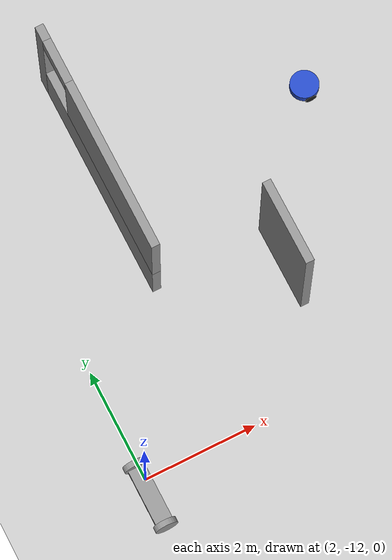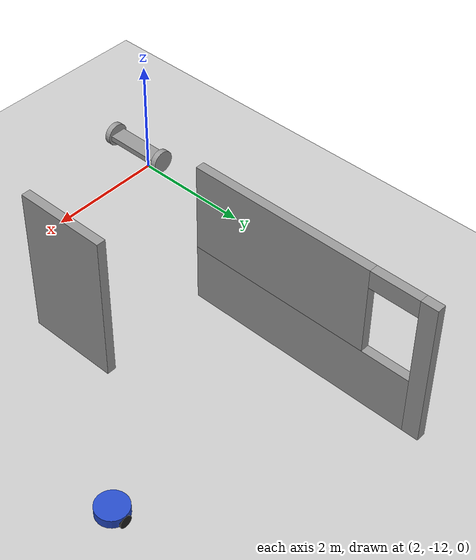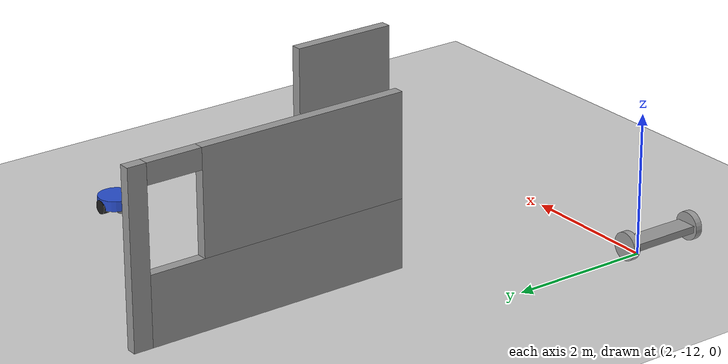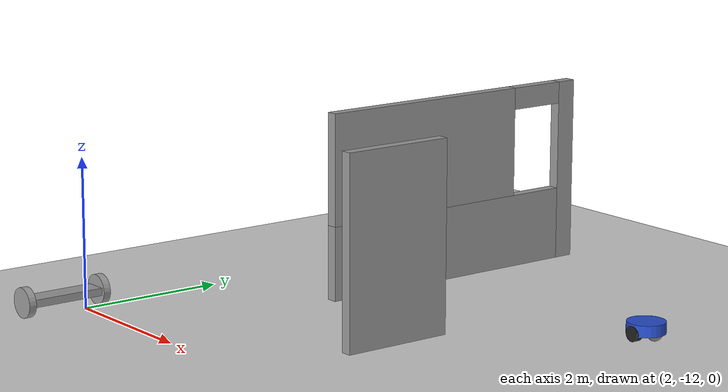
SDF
<sdf version="1.6">
 <world name="default">
  <model name="ground_plane">
   <static>1</static>
   <link name="link">
    <collision name="collision">
     <geometry><plane><normal>0 0 1</normal><size>100 100</size></plane></geometry>
     <surface><friction><ode><mu>100</mu><mu2>50</mu2></ode></friction></surface>
    </collision>
    <visual name="visual">
     <cast_shadows>0</cast_shadows>
     <geometry><plane><normal>0 0 1</normal><size>100 100</size></plane></geometry>
     <material>
      <script><uri>file://media/materials/scripts/gazebo.material</uri><name>Gazebo/Grey</name></script>
     </material>
    </visual>
   </link>
  </model>
  <model name="Tartufino_clone">
   <link name="link_0">
    <pose>0 0 0.04 0 -0 0</pose>
    <inertial>
     <mass>1</mass>
     <inertia><ixx>0.145833</ixx><ixy>0</ixy><ixz>0</ixz><iyy>0.145833</iyy><iyz>0</iyz><izz>0.125</izz></inertia>
    </inertial>
    <visual name="visual">
     <geometry><cylinder><radius>0.25</radius><length>0.15</length></cylinder></geometry>
     <material>
      <lighting>1</lighting>
      <script><uri>file://media/materials/scripts/gazebo.material</uri><name>Gazebo/Blue</name></script>
      <ambient>0.3 0.3 0.3 1</ambient>
      <diffuse>0.7 0.7 0.7 1</diffuse>
      <specular>0.01 0.01 0.01 1</specular>
      <emissive>0 0 0 1</emissive>
      <shader type="vertex"><normal_map>__default__</normal_map></shader>
     </material>
    </visual>
    <collision name="collision">
     <geometry><cylinder><radius>0.25</radius><length>0.15</length></cylinder></geometry>
     <surface>
      <friction>
       <ode><mu>1</mu><mu2>1</mu2><fdir1>0 0 0</fdir1><slip1>0</slip1><slip2>0</slip2></ode>
       <torsional>
        <coefficient>1</coefficient>
        <patch_radius>0</patch_radius>
        <surface_radius>0</surface_radius>
        <use_patch_radius>1</use_patch_radius>
        <ode><slip>0</slip></ode>
       </torsional>
      </friction>
      <bounce><restitution_coefficient>0</restitution_coefficient><threshold>1e+06</threshold></bounce>
      <contact>
       <collide_without_contact>0</collide_without_contact>
       <collide_without_contact_bitmask>1</collide_without_contact_bitmask>
       <collide_bitmask>1</collide_bitmask>
       <ode>
        <soft_cfm>0</soft_cfm>
        <soft_erp>0.2</soft_erp>
        <kp>1e+13</kp>
        <kd>1</kd>
        <max_vel>0.01</max_vel>
        <min_depth>0</min_depth>
       </ode>
       <bullet>
        <split_impulse>1</split_impulse>
        <split_impulse_penetration_threshold>-0.01</split_impulse_penetration_threshold>
        <soft_cfm>0</soft_cfm>
        <soft_erp>0.2</soft_erp>
        <kp>1e+13</kp>
        <kd>1</kd>
       </bullet>
      </contact>
     </surface>
    </collision>
   </link>
   <link name="link_1">
    <pose>0 0.2 -0.01 0 -0 0</pose>
    <inertial>
     <mass>1</mass>
     <inertia><ixx>0.145833</ixx><ixy>0</ixy><ixz>0</ixz><iyy>0.145833</iyy><iyz>0</iyz><izz>0.125</izz></inertia>
    </inertial>
    <visual name="visual">
     <pose>0 0 0 1.5708 -0 0</pose>
     <geometry><cylinder><radius>0.1</radius><length>0.1</length></cylinder></geometry>
     <material>
      <lighting>1</lighting>
      <script><uri>file://media/materials/scripts/gazebo.material</uri><name>Gazebo/Black</name></script>
      <ambient>0.3 0.3 0.3 1</ambient>
      <diffuse>0.7 0.7 0.7 1</diffuse>
      <specular>0.01 0.01 0.01 1</specular>
      <emissive>0 0 0 1</emissive>
      <shader type="vertex"><normal_map>__default__</normal_map></shader>
     </material>
    </visual>
    <collision name="collision">
     <pose>0 0 0 1.5708 -0 0</pose>
     <geometry><cylinder><radius>0.1</radius><length>0.1</length></cylinder></geometry>
     <surface>
      <friction>
       <ode><mu>1</mu><mu2>1</mu2><fdir1>0 0 0</fdir1><slip1>0</slip1><slip2>0</slip2></ode>
       <torsional>
        <coefficient>1</coefficient>
        <patch_radius>0</patch_radius>
        <surface_radius>0</surface_radius>
        <use_patch_radius>1</use_patch_radius>
        <ode><slip>0</slip></ode>
       </torsional>
      </friction>
      <bounce><restitution_coefficient>0</restitution_coefficient><threshold>1e+06</threshold></bounce>
      <contact>
       <collide_without_contact>0</collide_without_contact>
       <collide_without_contact_bitmask>1</collide_without_contact_bitmask>
       <collide_bitmask>1</collide_bitmask>
       <ode>
        <soft_cfm>0</soft_cfm>
        <soft_erp>0.2</soft_erp>
        <kp>1e+13</kp>
        <kd>1</kd>
        <max_vel>0.01</max_vel>
        <min_depth>0</min_depth>
       </ode>
       <bullet>
        <split_impulse>1</split_impulse>
        <split_impulse_penetration_threshold>-0.01</split_impulse_penetration_threshold>
        <soft_cfm>0</soft_cfm>
        <soft_erp>0.2</soft_erp>
        <kp>1e+13</kp>
        <kd>1</kd>
       </bullet>
      </contact>
     </surface>
    </collision>
   </link>
   <link name="link_1_clone">
    <pose>0 -0.2 -0.01 0 -0 0</pose>
    <inertial>
     <mass>1</mass>
     <inertia><ixx>0.145833</ixx><ixy>0</ixy><ixz>0</ixz><iyy>0.145833</iyy><iyz>0</iyz><izz>0.125</izz></inertia>
    </inertial>
    <visual name="visual">
     <pose>0 0 0 1.5708 -0 0</pose>
     <geometry><cylinder><radius>0.1</radius><length>0.1</length></cylinder></geometry>
     <material>
      <lighting>1</lighting>
      <script><uri>file://media/materials/scripts/gazebo.material</uri><name>Gazebo/Black</name></script>
      <ambient>0.3 0.3 0.3 1</ambient>
      <diffuse>0.7 0.7 0.7 1</diffuse>
      <specular>0.01 0.01 0.01 1</specular>
      <emissive>0 0 0 1</emissive>
      <shader type="vertex"><normal_map>__default__</normal_map></shader>
     </material>
    </visual>
    <collision name="collision">
     <pose>0 0 0 1.5708 -0 0</pose>
     <geometry><cylinder><radius>0.1</radius><length>0.1</length></cylinder></geometry>
     <surface>
      <friction>
       <ode><mu>1</mu><mu2>1</mu2><fdir1>0 0 0</fdir1><slip1>0</slip1><slip2>0</slip2></ode>
       <torsional>
        <coefficient>1</coefficient>
        <patch_radius>0</patch_radius>
        <surface_radius>0</surface_radius>
        <use_patch_radius>1</use_patch_radius>
        <ode><slip>0</slip></ode>
       </torsional>
      </friction>
      <bounce><restitution_coefficient>0</restitution_coefficient><threshold>1e+06</threshold></bounce>
      <contact>
       <collide_without_contact>0</collide_without_contact>
       <collide_without_contact_bitmask>1</collide_without_contact_bitmask>
       <collide_bitmask>1</collide_bitmask>
       <ode>
        <soft_cfm>0</soft_cfm>
        <soft_erp>0.2</soft_erp>
        <kp>1e+13</kp>
        <kd>1</kd>
        <max_vel>0.01</max_vel>
        <min_depth>0</min_depth>
       </ode>
       <bullet>
        <split_impulse>1</split_impulse>
        <split_impulse_penetration_threshold>-0.01</split_impulse_penetration_threshold>
        <soft_cfm>0</soft_cfm>
        <soft_erp>0.2</soft_erp>
        <kp>1e+13</kp>
        <kd>1</kd>
       </bullet>
      </contact>
     </surface>
    </collision>
   </link>
   <link name="link_2">
    <pose>-0.15 0 -0.01 0 -0 0</pose>
    <inertial>
     <mass>1</mass>
     <inertia><ixx>0.1</ixx><ixy>0</ixy><ixz>0</ixz><iyy>0.1</iyy><iyz>0</iyz><izz>0.1</izz></inertia>
    </inertial>
    <visual name="visual">
     <geometry><sphere><radius>0.1</radius></sphere></geometry>
     <material>
      <lighting>1</lighting>
      <script><uri>file://media/materials/scripts/gazebo.material</uri><name>Gazebo/Grey</name></script>
      <ambient>0.3 0.3 0.3 1</ambient>
      <diffuse>0.7 0.7 0.7 1</diffuse>
      <specular>0.01 0.01 0.01 1</specular>
      <emissive>0 0 0 1</emissive>
      <shader type="vertex"><normal_map>__default__</normal_map></shader>
     </material>
    </visual>
    <collision name="collision">
     <geometry><sphere><radius>0.1</radius></sphere></geometry>
     <surface>
      <friction>
       <ode><mu>0</mu><mu2>0</mu2><fdir1>0 0 0</fdir1><slip1>1</slip1><slip2>1</slip2></ode>
       <torsional>
        <coefficient>1</coefficient>
        <patch_radius>0</patch_radius>
        <surface_radius>0</surface_radius>
        <use_patch_radius>1</use_patch_radius>
        <ode><slip>0</slip></ode>
       </torsional>
      </friction>
      <bounce><restitution_coefficient>0</restitution_coefficient><threshold>1e+06</threshold></bounce>
      <contact>
       <collide_without_contact>0</collide_without_contact>
       <collide_without_contact_bitmask>1</collide_without_contact_bitmask>
       <collide_bitmask>1</collide_bitmask>
       <ode>
        <soft_cfm>0</soft_cfm>
        <soft_erp>0.2</soft_erp>
        <kp>1e+13</kp>
        <kd>1</kd>
        <max_vel>0.01</max_vel>
        <min_depth>0</min_depth>
       </ode>
       <bullet>
        <split_impulse>1</split_impulse>
        <split_impulse_penetration_threshold>-0.01</split_impulse_penetration_threshold>
        <soft_cfm>0</soft_cfm>
        <soft_erp>0.2</soft_erp>
        <kp>1e+13</kp>
        <kd>1</kd>
       </bullet>
      </contact>
     </surface>
    </collision>
   </link>
   <link name="link_2_clone">
    <pose>0.15 0 -0.01 0 -0 0</pose>
    <inertial>
     <mass>1</mass>
     <inertia><ixx>0.1</ixx><ixy>0</ixy><ixz>0</ixz><iyy>0.1</iyy><iyz>0</iyz><izz>0.1</izz></inertia>
    </inertial>
    <visual name="visual">
     <geometry><sphere><radius>0.1</radius></sphere></geometry>
     <material>
      <lighting>1</lighting>
      <script><uri>file://media/materials/scripts/gazebo.material</uri><name>Gazebo/Grey</name></script>
      <ambient>0.3 0.3 0.3 1</ambient>
      <diffuse>0.7 0.7 0.7 1</diffuse>
      <specular>0.01 0.01 0.01 1</specular>
      <emissive>0 0 0 1</emissive>
      <shader type="vertex"><normal_map>__default__</normal_map></shader>
     </material>
    </visual>
    <collision name="collision">
     <geometry><sphere><radius>0.1</radius></sphere></geometry>
     <surface>
      <friction>
       <ode><mu>0</mu><mu2>0</mu2><fdir1>0 0 0</fdir1><slip1>1</slip1><slip2>1</slip2></ode>
       <torsional>
        <coefficient>1</coefficient>
        <patch_radius>0</patch_radius>
        <surface_radius>0</surface_radius>
        <use_patch_radius>1</use_patch_radius>
        <ode><slip>0</slip></ode>
       </torsional>
      </friction>
      <bounce><restitution_coefficient>0</restitution_coefficient><threshold>1e+06</threshold></bounce>
      <contact>
       <collide_without_contact>0</collide_without_contact>
       <collide_without_contact_bitmask>1</collide_without_contact_bitmask>
       <collide_bitmask>1</collide_bitmask>
       <ode>
        <soft_cfm>0</soft_cfm>
        <soft_erp>0.2</soft_erp>
        <kp>1e+13</kp>
        <kd>1</kd>
        <max_vel>0.01</max_vel>
        <min_depth>0</min_depth>
       </ode>
       <bullet>
        <split_impulse>1</split_impulse>
        <split_impulse_penetration_threshold>-0.01</split_impulse_penetration_threshold>
        <soft_cfm>0</soft_cfm>
        <soft_erp>0.2</soft_erp>
        <kp>1e+13</kp>
        <kd>1</kd>
       </bullet>
      </contact>
     </surface>
    </collision>
   </link>
   <joint name="link_0_JOINT_1" type="revolute">
    <parent>link_0</parent>
    <child>link_1</child>
    <axis>
     <xyz>0 -1 0</xyz>
     <use_parent_model_frame>0</use_parent_model_frame>
     <limit>
      <lower>-1.79769e+308</lower>
      <upper>1.79769e+308</upper>
      <effort>-1</effort>
      <velocity>-1</velocity>
     </limit>
     <dynamics>
      <spring_reference>0</spring_reference>
      <spring_stiffness>0</spring_stiffness>
      <damping>0</damping>
      <friction>0</friction>
     </dynamics>
    </axis>
    <physics>
     <ode><limit><cfm>0</cfm><erp>0.2</erp></limit><suspension><cfm>0</cfm><erp>0.2</erp></suspension></ode>
    </physics>
   </joint>
   <joint name="link_0_JOINT_2" type="revolute">
    <parent>link_0</parent>
    <child>link_1_clone</child>
    <pose>0 -0.01 0 0 -0 0</pose>
    <axis>
     <xyz>0 1 0</xyz>
     <use_parent_model_frame>0</use_parent_model_frame>
     <limit>
      <lower>-1.79769e+308</lower>
      <upper>1.79769e+308</upper>
      <effort>-1</effort>
      <velocity>-1</velocity>
     </limit>
     <dynamics>
      <spring_reference>0</spring_reference>
      <spring_stiffness>0</spring_stiffness>
      <damping>0</damping>
     </dynamics>
    </axis>
    <physics>
     <ode><limit><cfm>0</cfm><erp>0.2</erp></limit><suspension><cfm>0</cfm><erp>0.2</erp></suspension></ode>
    </physics>
   </joint>
   <joint name="link_0_JOINT_4" type="fixed">
    <parent>link_0</parent>
    <child>link_2</child>
    <physics>
     <ode><limit><cfm>0</cfm><erp>0.2</erp></limit><suspension><cfm>0</cfm><erp>0.2</erp></suspension></ode>
    </physics>
   </joint>
   <joint name="link_0_JOINT_5" type="fixed">
    <parent>link_0</parent>
    <child>link_2_clone</child>
    <pose>0 0 -0.01 0 -0 0</pose>
    <physics>
     <ode><limit><cfm>0</cfm><erp>0.2</erp></limit><suspension><cfm>0</cfm><erp>0.2</erp></suspension></ode>
    </physics>
   </joint>
   <static>0</static>
   <pose>7.3919 -7.2122 0.120001 -3e-06 -3e-06 0.00385</pose>
  </model>
  <model name="robot_0">
   <link name="link_1">
    <inertial>
     <mass>1</mass>
     <inertia>
      <ixx>0.166667</ixx>
      <ixy>0</ixy>
      <ixz>0</ixz>
      <iyy>0.166667</iyy>
      <iyz>0</iyz>
      <izz>0.166667</izz>
     </inertia>
    </inertial>
    <visual name="visual">
     <geometry><box><size>0.3 1 0.1</size></box></geometry>
     <material>
      <lighting>1</lighting>
      <script><uri>file://media/materials/scripts/gazebo.material</uri><name>Gazebo/Grey</name></script>
      <ambient>0.3 0.3 0.3 1</ambient>
      <diffuse>0.7 0.7 0.7 1</diffuse>
      <specular>0.01 0.01 0.01 1</specular>
      <emissive>0 0 0 1</emissive>
      <shader type="vertex"><normal_map>__default__</normal_map></shader>
     </material>
    </visual>
    <collision name="collision">
     <geometry><box><size>0.3 1 0.1</size></box></geometry>
     <surface>
      <friction>
       <ode><mu>1</mu><mu2>1</mu2><fdir1>0 0 0</fdir1><slip1>0</slip1><slip2>0</slip2></ode>
       <torsional>
        <coefficient>1</coefficient>
        <patch_radius>0</patch_radius>
        <surface_radius>0</surface_radius>
        <use_patch_radius>1</use_patch_radius>
        <ode><slip>0</slip></ode>
       </torsional>
      </friction>
      <bounce><restitution_coefficient>0</restitution_coefficient><threshold>1e+06</threshold></bounce>
      <contact>
       <collide_without_contact>0</collide_without_contact>
       <collide_without_contact_bitmask>1</collide_without_contact_bitmask>
       <collide_bitmask>1</collide_bitmask>
       <ode>
        <soft_cfm>0</soft_cfm>
        <soft_erp>0.2</soft_erp>
        <kp>1e+13</kp>
        <kd>1</kd>
        <max_vel>0.01</max_vel>
        <min_depth>0</min_depth>
       </ode>
       <bullet>
        <split_impulse>1</split_impulse>
        <split_impulse_penetration_threshold>-0.01</split_impulse_penetration_threshold>
        <soft_cfm>0</soft_cfm>
        <soft_erp>0.2</soft_erp>
        <kp>1e+13</kp>
        <kd>1</kd>
       </bullet>
      </contact>
     </surface>
    </collision>
   </link>
   <link name="link_3">
    <pose>0 0.550019 0 1.5707 -0 0</pose>
    <inertial>
     <mass>1</mass>
     <inertia><ixx>0.145833</ixx><ixy>0</ixy><ixz>0</ixz><iyy>0.145833</iyy><iyz>0</iyz><izz>0.125</izz></inertia>
    </inertial>
    <visual name="visual">
     <geometry><cylinder><radius>0.2</radius><length>0.1</length></cylinder></geometry>
     <material>
      <lighting>1</lighting>
      <script><uri>file://media/materials/scripts/gazebo.material</uri><name>Gazebo/Grey</name></script>
      <ambient>0.3 0.3 0.3 1</ambient>
      <diffuse>0.7 0.7 0.7 1</diffuse>
      <specular>0.01 0.01 0.01 1</specular>
      <emissive>0 0 0 1</emissive>
      <shader type="vertex"><normal_map>__default__</normal_map></shader>
     </material>
    </visual>
    <collision name="collision">
     <geometry><cylinder><radius>0.2</radius><length>0.1</length></cylinder></geometry>
     <surface>
      <friction>
       <ode><mu>1</mu><mu2>1</mu2><fdir1>0 0 0</fdir1><slip1>0</slip1><slip2>0</slip2></ode>
       <torsional>
        <coefficient>1</coefficient>
        <patch_radius>0</patch_radius>
        <surface_radius>0</surface_radius>
        <use_patch_radius>1</use_patch_radius>
        <ode><slip>0</slip></ode>
       </torsional>
      </friction>
      <bounce><restitution_coefficient>0</restitution_coefficient><threshold>1e+06</threshold></bounce>
      <contact>
       <collide_without_contact>0</collide_without_contact>
       <collide_without_contact_bitmask>1</collide_without_contact_bitmask>
       <collide_bitmask>1</collide_bitmask>
       <ode>
        <soft_cfm>0</soft_cfm>
        <soft_erp>0.2</soft_erp>
        <kp>1e+13</kp>
        <kd>1</kd>
        <max_vel>0.01</max_vel>
        <min_depth>0</min_depth>
       </ode>
       <bullet>
        <split_impulse>1</split_impulse>
        <split_impulse_penetration_threshold>-0.01</split_impulse_penetration_threshold>
        <soft_cfm>0</soft_cfm>
        <soft_erp>0.2</soft_erp>
        <kp>1e+13</kp>
        <kd>1</kd>
       </bullet>
      </contact>
     </surface>
    </collision>
   </link>
   <link name="link_3_clone">
    <pose>0 -0.550019 0 1.5707 -0 0</pose>
    <inertial>
     <mass>1</mass>
     <inertia><ixx>0.145833</ixx><ixy>0</ixy><ixz>0</ixz><iyy>0.145833</iyy><iyz>0</iyz><izz>0.125</izz></inertia>
    </inertial>
    <visual name="visual">
     <geometry><cylinder><radius>0.2</radius><length>0.1</length></cylinder></geometry>
     <material>
      <lighting>1</lighting>
      <script><uri>file://media/materials/scripts/gazebo.material</uri><name>Gazebo/Grey</name></script>
      <ambient>0.3 0.3 0.3 1</ambient>
      <diffuse>0.7 0.7 0.7 1</diffuse>
      <specular>0.01 0.01 0.01 1</specular>
      <emissive>0 0 0 1</emissive>
      <shader type="vertex"><normal_map>__default__</normal_map></shader>
     </material>
    </visual>
    <collision name="collision">
     <geometry><cylinder><radius>0.2</radius><length>0.1</length></cylinder></geometry>
     <surface>
      <friction>
       <ode><mu>1</mu><mu2>1</mu2><fdir1>0 0 0</fdir1><slip1>0</slip1><slip2>0</slip2></ode>
       <torsional>
        <coefficient>1</coefficient>
        <patch_radius>0</patch_radius>
        <surface_radius>0</surface_radius>
        <use_patch_radius>1</use_patch_radius>
        <ode><slip>0</slip></ode>
       </torsional>
      </friction>
      <bounce><restitution_coefficient>0</restitution_coefficient><threshold>1e+06</threshold></bounce>
      <contact>
       <collide_without_contact>0</collide_without_contact>
       <collide_without_contact_bitmask>1</collide_without_contact_bitmask>
       <collide_bitmask>1</collide_bitmask>
       <ode>
        <soft_cfm>0</soft_cfm>
        <soft_erp>0.2</soft_erp>
        <kp>1e+13</kp>
        <kd>1</kd>
        <max_vel>0.01</max_vel>
        <min_depth>0</min_depth>
       </ode>
       <bullet>
        <split_impulse>1</split_impulse>
        <split_impulse_penetration_threshold>-0.01</split_impulse_penetration_threshold>
        <soft_cfm>0</soft_cfm>
        <soft_erp>0.2</soft_erp>
        <kp>1e+13</kp>
        <kd>1</kd>
       </bullet>
      </contact>
     </surface>
    </collision>
   </link>
   <joint name="link_1_JOINT_2" type="revolute">
    <parent>link_1</parent>
    <child>link_3_clone</child>
    <axis>
     <xyz>1 0 0</xyz>
     <use_parent_model_frame>0</use_parent_model_frame>
     <limit>
      <lower>-1.79769e+308</lower>
      <upper>1.79769e+308</upper>
      <effort>-1</effort>
      <velocity>-1</velocity>
     </limit>
     <dynamics>
      <spring_reference>0</spring_reference>
      <spring_stiffness>0</spring_stiffness>
      <damping>0</damping>
     </dynamics>
    </axis>
    <physics>
     <ode><limit><cfm>0</cfm><erp>0.2</erp></limit><suspension><cfm>0</cfm><erp>0.2</erp></suspension></ode>
    </physics>
   </joint>
   <joint name="link_1_JOINT_4" type="revolute">
    <parent>link_1</parent>
    <child>link_3</child>
    <axis>
     <xyz>1 0 0</xyz>
     <use_parent_model_frame>0</use_parent_model_frame>
     <limit>
      <lower>-1.79769e+308</lower>
      <upper>1.79769e+308</upper>
      <effort>-1</effort>
      <velocity>-1</velocity>
     </limit>
     <dynamics>
      <spring_reference>0</spring_reference>
      <spring_stiffness>0</spring_stiffness>
      <damping>0</damping>
     </dynamics>
    </axis>
    <physics>
     <ode><limit><cfm>0</cfm><erp>0.2</erp></limit><suspension><cfm>0</cfm><erp>0.2</erp></suspension></ode>
    </physics>
   </joint>
   <static>0</static>
   <pose>1.93523 -12.3034 0.209996 7e-06 1e-06 0</pose>
  </model>
  <model name="1floorHouse">
   <link name="Wall_302">
    <pose>-0.789795 -2.54 0 0 0 -1.5708</pose>
    <visual name="Wall_302_Visual_0">
     <pose>-1.93765 0 1.25 0 -0 0</pose>
     <geometry><box><size>0.274706 0.15 2.5</size></box></geometry>
     <material>
      <script><uri>file://media/materials/scripts/gazebo.material</uri><name>Gazebo/Grey</name></script>
      <ambient>1 1 1 1</ambient>
      <diffuse>0.7 0.7 0.7 1</diffuse>
      <specular>0.01 0.01 0.01 1</specular>
      <emissive>0 0 0 1</emissive>
     </material>
    </visual>
    <visual name="Wall_302_Visual_1">
     <pose>0.137353 0 0.5 0 -0 0</pose>
     <geometry><box><size>3.87529 0.15 1</size></box></geometry>
     <material>
      <script><uri>file://media/materials/scripts/gazebo.material</uri><name>Gazebo/Grey</name></script>
      <ambient>1 1 1 1</ambient>
      <diffuse>0.7 0.7 0.7 1</diffuse>
      <specular>0.01 0.01 0.01 1</specular>
      <emissive>0 0 0 1</emissive>
     </material>
    </visual>
    <visual name="Wall_302_Visual_2">
     <pose>0.537353 0 1.75 0 -0 0</pose>
     <geometry><box><size>3.07529 0.15 1.5</size></box></geometry>
     <material>
      <script><uri>file://media/materials/scripts/gazebo.material</uri><name>Gazebo/Grey</name></script>
      <ambient>1 1 1 1</ambient>
      <diffuse>0.7 0.7 0.7 1</diffuse>
      <specular>0.01 0.01 0.01 1</specular>
      <emissive>0 0 0 1</emissive>
     </material>
    </visual>
    <visual name="Wall_302_Visual_3">
     <pose>-1.40029 0 2.35 0 -0 0</pose>
     <geometry><box><size>0.8 0.15 0.3</size></box></geometry>
     <material>
      <script><uri>file://media/materials/scripts/gazebo.material</uri><name>Gazebo/Grey</name></script>
      <ambient>1 1 1 1</ambient>
      <diffuse>0.7 0.7 0.7 1</diffuse>
      <specular>0.01 0.01 0.01 1</specular>
      <emissive>0 0 0 1</emissive>
     </material>
    </visual>
    <collision name="Wall_302_Collision_0">
     <pose>-1.93765 0 1.25 0 -0 0</pose>
     <geometry><box><size>0.274706 0.15 2.5</size></box></geometry>
     <surface>
      <friction>
       <ode><mu>1</mu><mu2>1</mu2><fdir1>0 0 0</fdir1><slip1>0</slip1><slip2>0</slip2></ode>
       <torsional>
        <coefficient>1</coefficient>
        <patch_radius>0</patch_radius>
        <surface_radius>0</surface_radius>
        <use_patch_radius>1</use_patch_radius>
        <ode><slip>0</slip></ode>
       </torsional>
      </friction>
      <bounce><restitution_coefficient>0</restitution_coefficient><threshold>1e+06</threshold></bounce>
      <contact>
       <collide_without_contact>0</collide_without_contact>
       <collide_without_contact_bitmask>1</collide_without_contact_bitmask>
       <collide_bitmask>1</collide_bitmask>
       <ode>
        <soft_cfm>0</soft_cfm>
        <soft_erp>0.2</soft_erp>
        <kp>1e+13</kp>
        <kd>1</kd>
        <max_vel>0.01</max_vel>
        <min_depth>0</min_depth>
       </ode>
       <bullet>
        <split_impulse>1</split_impulse>
        <split_impulse_penetration_threshold>-0.01</split_impulse_penetration_threshold>
        <soft_cfm>0</soft_cfm>
        <soft_erp>0.2</soft_erp>
        <kp>1e+13</kp>
        <kd>1</kd>
       </bullet>
      </contact>
     </surface>
    </collision>
    <collision name="Wall_302_Collision_3">
     <pose>-1.40029 0 2.35 0 -0 0</pose>
     <geometry><box><size>0.8 0.15 0.3</size></box></geometry>
     <surface>
      <friction>
       <ode><mu>1</mu><mu2>1</mu2><fdir1>0 0 0</fdir1><slip1>0</slip1><slip2>0</slip2></ode>
       <torsional>
        <coefficient>1</coefficient>
        <patch_radius>0</patch_radius>
        <surface_radius>0</surface_radius>
        <use_patch_radius>1</use_patch_radius>
        <ode><slip>0</slip></ode>
       </torsional>
      </friction>
      <bounce><restitution_coefficient>0</restitution_coefficient><threshold>1e+06</threshold></bounce>
      <contact>
       <collide_without_contact>0</collide_without_contact>
       <collide_without_contact_bitmask>1</collide_without_contact_bitmask>
       <collide_bitmask>1</collide_bitmask>
       <ode>
        <soft_cfm>0</soft_cfm>
        <soft_erp>0.2</soft_erp>
        <kp>1e+13</kp>
        <kd>1</kd>
        <max_vel>0.01</max_vel>
        <min_depth>0</min_depth>
       </ode>
       <bullet>
        <split_impulse>1</split_impulse>
        <split_impulse_penetration_threshold>-0.01</split_impulse_penetration_threshold>
        <soft_cfm>0</soft_cfm>
        <soft_erp>0.2</soft_erp>
        <kp>1e+13</kp>
        <kd>1</kd>
       </bullet>
      </contact>
     </surface>
    </collision>
    <collision name="Wall_302_Collision_1">
     <pose>0.137353 0 0.5 0 -0 0</pose>
     <geometry><box><size>3.87529 0.15 1</size></box></geometry>
     <surface>
      <friction>
       <ode><mu>1</mu><mu2>1</mu2><fdir1>0 0 0</fdir1><slip1>0</slip1><slip2>0</slip2></ode>
       <torsional>
        <coefficient>1</coefficient>
        <patch_radius>0</patch_radius>
        <surface_radius>0</surface_radius>
        <use_patch_radius>1</use_patch_radius>
        <ode><slip>0</slip></ode>
       </torsional>
      </friction>
      <bounce><restitution_coefficient>0</restitution_coefficient><threshold>1e+06</threshold></bounce>
      <contact>
       <collide_without_contact>0</collide_without_contact>
       <collide_without_contact_bitmask>1</collide_without_contact_bitmask>
       <collide_bitmask>1</collide_bitmask>
       <ode>
        <soft_cfm>0</soft_cfm>
        <soft_erp>0.2</soft_erp>
        <kp>1e+13</kp>
        <kd>1</kd>
        <max_vel>0.01</max_vel>
        <min_depth>0</min_depth>
       </ode>
       <bullet>
        <split_impulse>1</split_impulse>
        <split_impulse_penetration_threshold>-0.01</split_impulse_penetration_threshold>
        <soft_cfm>0</soft_cfm>
        <soft_erp>0.2</soft_erp>
        <kp>1e+13</kp>
        <kd>1</kd>
       </bullet>
      </contact>
     </surface>
    </collision>
    <collision name="Wall_302_Collision_2">
     <pose>0.537353 0 1.75 0 -0 0</pose>
     <geometry><box><size>3.07529 0.15 1.5</size></box></geometry>
     <surface>
      <friction>
       <ode><mu>1</mu><mu2>1</mu2><fdir1>0 0 0</fdir1><slip1>0</slip1><slip2>0</slip2></ode>
       <torsional>
        <coefficient>1</coefficient>
        <patch_radius>0</patch_radius>
        <surface_radius>0</surface_radius>
        <use_patch_radius>1</use_patch_radius>
        <ode><slip>0</slip></ode>
       </torsional>
      </friction>
      <bounce><restitution_coefficient>0</restitution_coefficient><threshold>1e+06</threshold></bounce>
      <contact>
       <collide_without_contact>0</collide_without_contact>
       <collide_without_contact_bitmask>1</collide_without_contact_bitmask>
       <collide_bitmask>1</collide_bitmask>
       <ode>
        <soft_cfm>0</soft_cfm>
        <soft_erp>0.2</soft_erp>
        <kp>1e+13</kp>
        <kd>1</kd>
        <max_vel>0.01</max_vel>
        <min_depth>0</min_depth>
       </ode>
       <bullet>
        <split_impulse>1</split_impulse>
        <split_impulse_penetration_threshold>-0.01</split_impulse_penetration_threshold>
        <soft_cfm>0</soft_cfm>
        <soft_erp>0.2</soft_erp>
        <kp>1e+13</kp>
        <kd>1</kd>
       </bullet>
      </contact>
     </surface>
    </collision>
   </link>
   <link name="Wall_342">
    <pose>1.26021 -5.195 0 0 0 -1.5708</pose>
    <visual name="Wall_342_Visual">
     <pose>0 0 1.25 0 -0 0</pose>
     <geometry><box><size>1.5 0.15 2.5</size></box></geometry>
     <material>
      <script><uri>file://media/materials/scripts/gazebo.material</uri><name>Gazebo/Grey</name></script>
      <ambient>1 1 1 1</ambient>
      <diffuse>0.7 0.7 0.7 1</diffuse>
      <specular>0.01 0.01 0.01 1</specular>
      <emissive>0 0 0 1</emissive>
     </material>
    </visual>
    <collision name="Wall_342_Collision">
     <pose>0 0 1.25 0 -0 0</pose>
     <geometry><box><size>1.5 0.15 2.5</size></box></geometry>
     <surface>
      <friction>
       <ode><mu>1</mu><mu2>1</mu2><fdir1>0 0 0</fdir1><slip1>0</slip1><slip2>0</slip2></ode>
       <torsional>
        <coefficient>1</coefficient>
        <patch_radius>0</patch_radius>
        <surface_radius>0</surface_radius>
        <use_patch_radius>1</use_patch_radius>
        <ode><slip>0</slip></ode>
       </torsional>
      </friction>
      <bounce><restitution_coefficient>0</restitution_coefficient><threshold>1e+06</threshold></bounce>
      <contact>
       <collide_without_contact>0</collide_without_contact>
       <collide_without_contact_bitmask>1</collide_without_contact_bitmask>
       <collide_bitmask>1</collide_bitmask>
       <ode>
        <soft_cfm>0</soft_cfm>
        <soft_erp>0.2</soft_erp>
        <kp>1e+13</kp>
        <kd>1</kd>
        <max_vel>0.01</max_vel>
        <min_depth>0</min_depth>
       </ode>
       <bullet>
        <split_impulse>1</split_impulse>
        <split_impulse_penetration_threshold>-0.01</split_impulse_penetration_threshold>
        <soft_cfm>0</soft_cfm>
        <soft_erp>0.2</soft_erp>
        <kp>1e+13</kp>
        <kd>1</kd>
       </bullet>
      </contact>
     </surface>
    </collision>
   </link>
   <static>1</static>
   <pose>4.39833 -4.61297 0 0 -0 0</pose>
  </model>
 </world>
</sdf>
